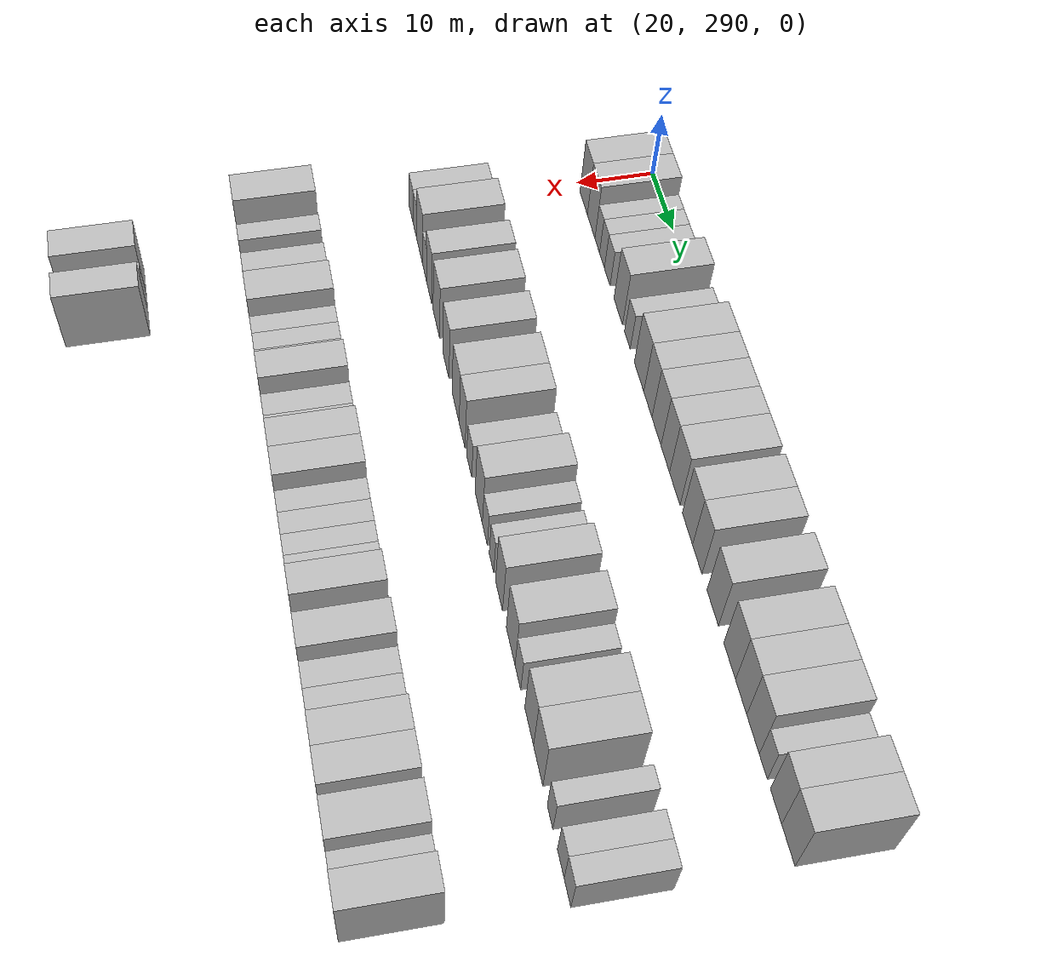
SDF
<sdf version="1.6">
 <world name="default">
  <model name="building_158">
   <static>1</static>
   <pose>25.0000 293.5448 0 0.000000 0.000000 0.000000</pose>
   <link name="link">
    <pose>0 0 4.50 0 0 0</pose>
    <collision name="collision"><geometry><box><size>10.0000 4.0485 9.0000</size></box></geometry></collision>
    <visual name="visual">
     <cast_shadows>0</cast_shadows>
     <geometry><box><size>10.0000 4.0485 9.0000</size></box></geometry>
     <material>
      <script>
       <uri>model://HANNAS_wall/materials/scripts</uri>
       <uri>model://HANNAS_wall/materials/textures</uri>
       <name>vrc/HANNAS_wall</name>
      </script>
     </material>
    </visual>
   </link>
  </model>
  <model name="building_159">
   <static>1</static>
   <pose>25.0000 297.6197 0 0.000000 0.000000 0.000000</pose>
   <link name="link">
    <pose>0 0 4.50 0 0 0</pose>
    <collision name="collision"><geometry><box><size>10.0000 4.1015 9.0000</size></box></geometry></collision>
    <visual name="visual">
     <cast_shadows>0</cast_shadows>
     <geometry><box><size>10.0000 4.1015 9.0000</size></box></geometry>
     <material>
      <script>
       <uri>model://HANNAS_wall/materials/scripts</uri>
       <uri>model://HANNAS_wall/materials/textures</uri>
       <name>vrc/HANNAS_wall</name>
      </script>
     </material>
    </visual>
   </link>
  </model>
  <model name="building_160">
   <static>1</static>
   <pose>25.0000 300.8931 0 0.000000 0.000000 0.000000</pose>
   <link name="link">
    <pose>0 0 3.00 0 0 0</pose>
    <collision name="collision"><geometry><box><size>10.0000 2.4452 6.0000</size></box></geometry></collision>
    <visual name="visual">
     <cast_shadows>0</cast_shadows>
     <geometry><box><size>10.0000 2.4452 6.0000</size></box></geometry>
     <material>
      <script>
       <uri>model://HANNAS_wall/materials/scripts</uri>
       <uri>model://HANNAS_wall/materials/textures</uri>
       <name>vrc/HANNAS_wall</name>
      </script>
     </material>
    </visual>
   </link>
  </model>
  <model name="building_161">
   <static>1</static>
   <pose>25.0000 303.3896 0 0.000000 0.000000 0.000000</pose>
   <link name="link">
    <pose>0 0 3.00 0 0 0</pose>
    <collision name="collision"><geometry><box><size>10.0000 2.5478 6.0000</size></box></geometry></collision>
    <visual name="visual">
     <cast_shadows>0</cast_shadows>
     <geometry><box><size>10.0000 2.5478 6.0000</size></box></geometry>
     <material>
      <script>
       <uri>model://HANNAS_wall/materials/scripts</uri>
       <uri>model://HANNAS_wall/materials/textures</uri>
       <name>vrc/HANNAS_wall</name>
      </script>
     </material>
    </visual>
   </link>
  </model>
  <model name="building_162">
   <static>1</static>
   <pose>25.0000 306.1260 0 0.000000 0.000000 0.000000</pose>
   <link name="link">
    <pose>0 0 3.00 0 0 0</pose>
    <collision name="collision"><geometry><box><size>10.0000 2.9250 6.0000</size></box></geometry></collision>
    <visual name="visual">
     <cast_shadows>0</cast_shadows>
     <geometry><box><size>10.0000 2.9250 6.0000</size></box></geometry>
     <material>
      <script>
       <uri>model://HANNAS_wall/materials/scripts</uri>
       <uri>model://HANNAS_wall/materials/textures</uri>
       <name>vrc/HANNAS_wall</name>
      </script>
     </material>
    </visual>
   </link>
  </model>
  <model name="building_163">
   <static>1</static>
   <pose>25.0000 311.7057 0 0.000000 0.000000 0.000000</pose>
   <link name="link">
    <pose>0 0 4.50 0 0 0</pose>
    <collision name="collision"><geometry><box><size>10.0000 4.2346 9.0000</size></box></geometry></collision>
    <visual name="visual">
     <cast_shadows>0</cast_shadows>
     <geometry><box><size>10.0000 4.2346 9.0000</size></box></geometry>
     <material>
      <script>
       <uri>model://HANNAS_wall/materials/scripts</uri>
       <uri>model://HANNAS_wall/materials/textures</uri>
       <name>vrc/HANNAS_wall</name>
      </script>
     </material>
    </visual>
   </link>
  </model>
  <model name="building_164">
   <static>1</static>
   <pose>25.0000 316.1904 0 0.000000 0.000000 0.000000</pose>
   <link name="link">
    <pose>0 0 3.00 0 0 0</pose>
    <collision name="collision"><geometry><box><size>10.0000 2.7348 6.0000</size></box></geometry></collision>
    <visual name="visual">
     <cast_shadows>0</cast_shadows>
     <geometry><box><size>10.0000 2.7348 6.0000</size></box></geometry>
     <material>
      <script>
       <uri>model://HANNAS_wall/materials/scripts</uri>
       <uri>model://HANNAS_wall/materials/textures</uri>
       <name>vrc/HANNAS_wall</name>
      </script>
     </material>
    </visual>
   </link>
  </model>
  <model name="building_165">
   <static>1</static>
   <pose>25.0000 321.7567 0 0.000000 0.000000 0.000000</pose>
   <link name="link">
    <pose>0 0 4.50 0 0 0</pose>
    <collision name="collision"><geometry><box><size>10.0000 4.3978 9.0000</size></box></geometry></collision>
    <visual name="visual">
     <cast_shadows>0</cast_shadows>
     <geometry><box><size>10.0000 4.3978 9.0000</size></box></geometry>
     <material>
      <script>
       <uri>model://HANNAS_wall/materials/scripts</uri>
       <uri>model://HANNAS_wall/materials/textures</uri>
       <name>vrc/HANNAS_wall</name>
      </script>
     </material>
    </visual>
   </link>
  </model>
  <model name="building_166">
   <static>1</static>
   <pose>25.0000 325.8307 0 0.000000 0.000000 0.000000</pose>
   <link name="link">
    <pose>0 0 4.50 0 0 0</pose>
    <collision name="collision"><geometry><box><size>10.0000 3.7501 9.0000</size></box></geometry></collision>
    <visual name="visual">
     <cast_shadows>0</cast_shadows>
     <geometry><box><size>10.0000 3.7501 9.0000</size></box></geometry>
     <material>
      <script>
       <uri>model://HANNAS_wall/materials/scripts</uri>
       <uri>model://HANNAS_wall/materials/textures</uri>
       <name>vrc/HANNAS_wall</name>
      </script>
     </material>
    </visual>
   </link>
  </model>
  <model name="building_167">
   <static>1</static>
   <pose>25.0000 329.7131 0 0.000000 0.000000 0.000000</pose>
   <link name="link">
    <pose>0 0 4.50 0 0 0</pose>
    <collision name="collision"><geometry><box><size>10.0000 4.0148 9.0000</size></box></geometry></collision>
    <visual name="visual">
     <cast_shadows>0</cast_shadows>
     <geometry><box><size>10.0000 4.0148 9.0000</size></box></geometry>
     <material>
      <script>
       <uri>model://HANNAS_wall/materials/scripts</uri>
       <uri>model://HANNAS_wall/materials/textures</uri>
       <name>vrc/HANNAS_wall</name>
      </script>
     </material>
    </visual>
   </link>
  </model>
  <model name="building_168">
   <static>1</static>
   <pose>25.0000 333.5801 0 0.000000 0.000000 0.000000</pose>
   <link name="link">
    <pose>0 0 4.50 0 0 0</pose>
    <collision name="collision"><geometry><box><size>10.0000 3.7192 9.0000</size></box></geometry></collision>
    <visual name="visual">
     <cast_shadows>0</cast_shadows>
     <geometry><box><size>10.0000 3.7192 9.0000</size></box></geometry>
     <material>
      <script>
       <uri>model://HANNAS_wall/materials/scripts</uri>
       <uri>model://HANNAS_wall/materials/textures</uri>
       <name>vrc/HANNAS_wall</name>
      </script>
     </material>
    </visual>
   </link>
  </model>
  <model name="building_169">
   <static>1</static>
   <pose>25.0000 337.6604 0 0.000000 0.000000 0.000000</pose>
   <link name="link">
    <pose>0 0 4.50 0 0 0</pose>
    <collision name="collision"><geometry><box><size>10.0000 4.4413 9.0000</size></box></geometry></collision>
    <visual name="visual">
     <cast_shadows>0</cast_shadows>
     <geometry><box><size>10.0000 4.4413 9.0000</size></box></geometry>
     <material>
      <script>
       <uri>model://HANNAS_wall/materials/scripts</uri>
       <uri>model://HANNAS_wall/materials/textures</uri>
       <name>vrc/HANNAS_wall</name>
      </script>
     </material>
    </visual>
   </link>
  </model>
  <model name="building_170">
   <static>1</static>
   <pose>25.0000 342.9638 0 0.000000 0.000000 0.000000</pose>
   <link name="link">
    <pose>0 0 4.50 0 0 0</pose>
    <collision name="collision"><geometry><box><size>10.0000 4.1656 9.0000</size></box></geometry></collision>
    <visual name="visual">
     <cast_shadows>0</cast_shadows>
     <geometry><box><size>10.0000 4.1656 9.0000</size></box></geometry>
     <material>
      <script>
       <uri>model://HANNAS_wall/materials/scripts</uri>
       <uri>model://HANNAS_wall/materials/textures</uri>
       <name>vrc/HANNAS_wall</name>
      </script>
     </material>
    </visual>
   </link>
  </model>
  <model name="building_171">
   <static>1</static>
   <pose>25.0000 346.9037 0 0.000000 0.000000 0.000000</pose>
   <link name="link">
    <pose>0 0 4.50 0 0 0</pose>
    <collision name="collision"><geometry><box><size>10.0000 3.7142 9.0000</size></box></geometry></collision>
    <visual name="visual">
     <cast_shadows>0</cast_shadows>
     <geometry><box><size>10.0000 3.7142 9.0000</size></box></geometry>
     <material>
      <script>
       <uri>model://HANNAS_wall/materials/scripts</uri>
       <uri>model://HANNAS_wall/materials/textures</uri>
       <name>vrc/HANNAS_wall</name>
      </script>
     </material>
    </visual>
   </link>
  </model>
  <model name="building_172">
   <static>1</static>
   <pose>25.0000 352.9465 0 0.000000 0.000000 0.000000</pose>
   <link name="link">
    <pose>0 0 4.50 0 0 0</pose>
    <collision name="collision"><geometry><box><size>10.0000 4.3714 9.0000</size></box></geometry></collision>
    <visual name="visual">
     <cast_shadows>0</cast_shadows>
     <geometry><box><size>10.0000 4.3714 9.0000</size></box></geometry>
     <material>
      <script>
       <uri>model://HANNAS_wall/materials/scripts</uri>
       <uri>model://HANNAS_wall/materials/textures</uri>
       <name>vrc/HANNAS_wall</name>
      </script>
     </material>
    </visual>
   </link>
  </model>
  <model name="building_173">
   <static>1</static>
   <pose>25.0000 359.2829 0 0.000000 0.000000 0.000000</pose>
   <link name="link">
    <pose>0 0 4.50 0 0 0</pose>
    <collision name="collision"><geometry><box><size>10.0000 4.3014 9.0000</size></box></geometry></collision>
    <visual name="visual">
     <cast_shadows>0</cast_shadows>
     <geometry><box><size>10.0000 4.3014 9.0000</size></box></geometry>
     <material>
      <script>
       <uri>model://HANNAS_wall/materials/scripts</uri>
       <uri>model://HANNAS_wall/materials/textures</uri>
       <name>vrc/HANNAS_wall</name>
      </script>
     </material>
    </visual>
   </link>
  </model>
  <model name="building_174">
   <static>1</static>
   <pose>25.0000 363.4236 0 0.000000 0.000000 0.000000</pose>
   <link name="link">
    <pose>0 0 4.50 0 0 0</pose>
    <collision name="collision"><geometry><box><size>10.0000 3.9801 9.0000</size></box></geometry></collision>
    <visual name="visual">
     <cast_shadows>0</cast_shadows>
     <geometry><box><size>10.0000 3.9801 9.0000</size></box></geometry>
     <material>
      <script>
       <uri>model://HANNAS_wall/materials/scripts</uri>
       <uri>model://HANNAS_wall/materials/textures</uri>
       <name>vrc/HANNAS_wall</name>
      </script>
     </material>
    </visual>
   </link>
  </model>
  <model name="building_175">
   <static>1</static>
   <pose>25.0000 367.5806 0 0.000000 0.000000 0.000000</pose>
   <link name="link">
    <pose>0 0 4.50 0 0 0</pose>
    <collision name="collision"><geometry><box><size>10.0000 4.3338 9.0000</size></box></geometry></collision>
    <visual name="visual">
     <cast_shadows>0</cast_shadows>
     <geometry><box><size>10.0000 4.3338 9.0000</size></box></geometry>
     <material>
      <script>
       <uri>model://HANNAS_wall/materials/scripts</uri>
       <uri>model://HANNAS_wall/materials/textures</uri>
       <name>vrc/HANNAS_wall</name>
      </script>
     </material>
    </visual>
   </link>
  </model>
  <model name="building_176">
   <static>1</static>
   <pose>25.0000 371.0945 0 0.000000 0.000000 0.000000</pose>
   <link name="link">
    <pose>0 0 3.00 0 0 0</pose>
    <collision name="collision"><geometry><box><size>10.0000 2.6939 6.0000</size></box></geometry></collision>
    <visual name="visual">
     <cast_shadows>0</cast_shadows>
     <geometry><box><size>10.0000 2.6939 6.0000</size></box></geometry>
     <material>
      <script>
       <uri>model://HANNAS_wall/materials/scripts</uri>
       <uri>model://HANNAS_wall/materials/textures</uri>
       <name>vrc/HANNAS_wall</name>
      </script>
     </material>
    </visual>
   </link>
  </model>
  <model name="building_177">
   <static>1</static>
   <pose>25.0000 375.2835 0 0.000000 0.000000 0.000000</pose>
   <link name="link">
    <pose>0 0 4.50 0 0 0</pose>
    <collision name="collision"><geometry><box><size>10.0000 3.6842 9.0000</size></box></geometry></collision>
    <visual name="visual">
     <cast_shadows>0</cast_shadows>
     <geometry><box><size>10.0000 3.6842 9.0000</size></box></geometry>
     <material>
      <script>
       <uri>model://HANNAS_wall/materials/scripts</uri>
       <uri>model://HANNAS_wall/materials/textures</uri>
       <name>vrc/HANNAS_wall</name>
      </script>
     </material>
    </visual>
   </link>
  </model>
  <model name="building_178">
   <static>1</static>
   <pose>25.0000 379.2505 0 0.000000 0.000000 0.000000</pose>
   <link name="link">
    <pose>0 0 4.50 0 0 0</pose>
    <collision name="collision"><geometry><box><size>10.0000 4.2497 9.0000</size></box></geometry></collision>
    <visual name="visual">
     <cast_shadows>0</cast_shadows>
     <geometry><box><size>10.0000 4.2497 9.0000</size></box></geometry>
     <material>
      <script>
       <uri>model://HANNAS_wall/materials/scripts</uri>
       <uri>model://HANNAS_wall/materials/textures</uri>
       <name>vrc/HANNAS_wall</name>
      </script>
     </material>
    </visual>
   </link>
  </model>
  <model name="building_353">
   <static>1</static>
   <pose>47.0000 291.7545 0 0.000000 0.000000 0.000000</pose>
   <link name="link">
    <pose>0 0 3.00 0 0 0</pose>
    <collision name="collision"><geometry><box><size>10.0000 2.9041 6.0000</size></box></geometry></collision>
    <visual name="visual">
     <cast_shadows>0</cast_shadows>
     <geometry><box><size>10.0000 2.9041 6.0000</size></box></geometry>
     <material>
      <script>
       <uri>model://HANNAS_wall/materials/scripts</uri>
       <uri>model://HANNAS_wall/materials/textures</uri>
       <name>vrc/HANNAS_wall</name>
      </script>
     </material>
    </visual>
   </link>
  </model>
  <model name="building_354">
   <static>1</static>
   <pose>47.0000 294.5785 0 0.000000 0.000000 0.000000</pose>
   <link name="link">
    <pose>0 0 3.00 0 0 0</pose>
    <collision name="collision"><geometry><box><size>10.0000 2.7438 6.0000</size></box></geometry></collision>
    <visual name="visual">
     <cast_shadows>0</cast_shadows>
     <geometry><box><size>10.0000 2.7438 6.0000</size></box></geometry>
     <material>
      <script>
       <uri>model://HANNAS_wall/materials/scripts</uri>
       <uri>model://HANNAS_wall/materials/textures</uri>
       <name>vrc/HANNAS_wall</name>
      </script>
     </material>
    </visual>
   </link>
  </model>
  <model name="building_355">
   <static>1</static>
   <pose>47.0000 298.1355 0 0.000000 0.000000 0.000000</pose>
   <link name="link">
    <pose>0 0 4.50 0 0 0</pose>
    <collision name="collision"><geometry><box><size>10.0000 4.3703 9.0000</size></box></geometry></collision>
    <visual name="visual">
     <cast_shadows>0</cast_shadows>
     <geometry><box><size>10.0000 4.3703 9.0000</size></box></geometry>
     <material>
      <script>
       <uri>model://HANNAS_wall/materials/scripts</uri>
       <uri>model://HANNAS_wall/materials/textures</uri>
       <name>vrc/HANNAS_wall</name>
      </script>
     </material>
    </visual>
   </link>
  </model>
  <model name="building_356">
   <static>1</static>
   <pose>47.0000 301.6172 0 0.000000 0.000000 0.000000</pose>
   <link name="link">
    <pose>0 0 3.00 0 0 0</pose>
    <collision name="collision"><geometry><box><size>10.0000 2.5930 6.0000</size></box></geometry></collision>
    <visual name="visual">
     <cast_shadows>0</cast_shadows>
     <geometry><box><size>10.0000 2.5930 6.0000</size></box></geometry>
     <material>
      <script>
       <uri>model://HANNAS_wall/materials/scripts</uri>
       <uri>model://HANNAS_wall/materials/textures</uri>
       <name>vrc/HANNAS_wall</name>
      </script>
     </material>
    </visual>
   </link>
  </model>
  <model name="building_357">
   <static>1</static>
   <pose>47.0000 304.7554 0 0.000000 0.000000 0.000000</pose>
   <link name="link">
    <pose>0 0 4.50 0 0 0</pose>
    <collision name="collision"><geometry><box><size>10.0000 3.6834 9.0000</size></box></geometry></collision>
    <visual name="visual">
     <cast_shadows>0</cast_shadows>
     <geometry><box><size>10.0000 3.6834 9.0000</size></box></geometry>
     <material>
      <script>
       <uri>model://HANNAS_wall/materials/scripts</uri>
       <uri>model://HANNAS_wall/materials/textures</uri>
       <name>vrc/HANNAS_wall</name>
      </script>
     </material>
    </visual>
   </link>
  </model>
  <model name="building_358">
   <static>1</static>
   <pose>47.0000 309.8081 0 0.000000 0.000000 0.000000</pose>
   <link name="link">
    <pose>0 0 4.50 0 0 0</pose>
    <collision name="collision"><geometry><box><size>10.0000 4.4220 9.0000</size></box></geometry></collision>
    <visual name="visual">
     <cast_shadows>0</cast_shadows>
     <geometry><box><size>10.0000 4.4220 9.0000</size></box></geometry>
     <material>
      <script>
       <uri>model://HANNAS_wall/materials/scripts</uri>
       <uri>model://HANNAS_wall/materials/textures</uri>
       <name>vrc/HANNAS_wall</name>
      </script>
     </material>
    </visual>
   </link>
  </model>
  <model name="building_359">
   <static>1</static>
   <pose>47.0000 316.0968 0 0.000000 0.000000 0.000000</pose>
   <link name="link">
    <pose>0 0 4.50 0 0 0</pose>
    <collision name="collision"><geometry><box><size>10.0000 4.1554 9.0000</size></box></geometry></collision>
    <visual name="visual">
     <cast_shadows>0</cast_shadows>
     <geometry><box><size>10.0000 4.1554 9.0000</size></box></geometry>
     <material>
      <script>
       <uri>model://HANNAS_wall/materials/scripts</uri>
       <uri>model://HANNAS_wall/materials/textures</uri>
       <name>vrc/HANNAS_wall</name>
      </script>
     </material>
    </visual>
   </link>
  </model>
  <model name="building_360">
   <static>1</static>
   <pose>47.0000 322.3900 0 0.000000 0.000000 0.000000</pose>
   <link name="link">
    <pose>0 0 4.50 0 0 0</pose>
    <collision name="collision"><geometry><box><size>10.0000 4.4310 9.0000</size></box></geometry></collision>
    <visual name="visual">
     <cast_shadows>0</cast_shadows>
     <geometry><box><size>10.0000 4.4310 9.0000</size></box></geometry>
     <material>
      <script>
       <uri>model://HANNAS_wall/materials/scripts</uri>
       <uri>model://HANNAS_wall/materials/textures</uri>
       <name>vrc/HANNAS_wall</name>
      </script>
     </material>
    </visual>
   </link>
  </model>
  <model name="building_361">
   <static>1</static>
   <pose>47.0000 326.4262 0 0.000000 0.000000 0.000000</pose>
   <link name="link">
    <pose>0 0 4.50 0 0 0</pose>
    <collision name="collision"><geometry><box><size>10.0000 3.6414 9.0000</size></box></geometry></collision>
    <visual name="visual">
     <cast_shadows>0</cast_shadows>
     <geometry><box><size>10.0000 3.6414 9.0000</size></box></geometry>
     <material>
      <script>
       <uri>model://HANNAS_wall/materials/scripts</uri>
       <uri>model://HANNAS_wall/materials/textures</uri>
       <name>vrc/HANNAS_wall</name>
      </script>
     </material>
    </visual>
   </link>
  </model>
  <model name="building_362">
   <static>1</static>
   <pose>47.0000 330.7345 0 0.000000 0.000000 0.000000</pose>
   <link name="link">
    <pose>0 0 3.00 0 0 0</pose>
    <collision name="collision"><geometry><box><size>10.0000 2.9752 6.0000</size></box></geometry></collision>
    <visual name="visual">
     <cast_shadows>0</cast_shadows>
     <geometry><box><size>10.0000 2.9752 6.0000</size></box></geometry>
     <material>
      <script>
       <uri>model://HANNAS_wall/materials/scripts</uri>
       <uri>model://HANNAS_wall/materials/textures</uri>
       <name>vrc/HANNAS_wall</name>
      </script>
     </material>
    </visual>
   </link>
  </model>
  <model name="building_363">
   <static>1</static>
   <pose>47.0000 336.3121 0 0.000000 0.000000 0.000000</pose>
   <link name="link">
    <pose>0 0 4.50 0 0 0</pose>
    <collision name="collision"><geometry><box><size>10.0000 4.1800 9.0000</size></box></geometry></collision>
    <visual name="visual">
     <cast_shadows>0</cast_shadows>
     <geometry><box><size>10.0000 4.1800 9.0000</size></box></geometry>
     <material>
      <script>
       <uri>model://HANNAS_wall/materials/scripts</uri>
       <uri>model://HANNAS_wall/materials/textures</uri>
       <name>vrc/HANNAS_wall</name>
      </script>
     </material>
    </visual>
   </link>
  </model>
  <model name="building_364">
   <static>1</static>
   <pose>47.0000 339.8355 0 0.000000 0.000000 0.000000</pose>
   <link name="link">
    <pose>0 0 3.00 0 0 0</pose>
    <collision name="collision"><geometry><box><size>10.0000 2.8668 6.0000</size></box></geometry></collision>
    <visual name="visual">
     <cast_shadows>0</cast_shadows>
     <geometry><box><size>10.0000 2.8668 6.0000</size></box></geometry>
     <material>
      <script>
       <uri>model://HANNAS_wall/materials/scripts</uri>
       <uri>model://HANNAS_wall/materials/textures</uri>
       <name>vrc/HANNAS_wall</name>
      </script>
     </material>
    </visual>
   </link>
  </model>
  <model name="building_365">
   <static>1</static>
   <pose>47.0000 343.4858 0 0.000000 0.000000 0.000000</pose>
   <link name="link">
    <pose>0 0 3.00 0 0 0</pose>
    <collision name="collision"><geometry><box><size>10.0000 2.4337 6.0000</size></box></geometry></collision>
    <visual name="visual">
     <cast_shadows>0</cast_shadows>
     <geometry><box><size>10.0000 2.4337 6.0000</size></box></geometry>
     <material>
      <script>
       <uri>model://HANNAS_wall/materials/scripts</uri>
       <uri>model://HANNAS_wall/materials/textures</uri>
       <name>vrc/HANNAS_wall</name>
      </script>
     </material>
    </visual>
   </link>
  </model>
  <model name="building_366">
   <static>1</static>
   <pose>47.0000 347.5676 0 0.000000 0.000000 0.000000</pose>
   <link name="link">
    <pose>0 0 4.50 0 0 0</pose>
    <collision name="collision"><geometry><box><size>10.0000 3.7299 9.0000</size></box></geometry></collision>
    <visual name="visual">
     <cast_shadows>0</cast_shadows>
     <geometry><box><size>10.0000 3.7299 9.0000</size></box></geometry>
     <material>
      <script>
       <uri>model://HANNAS_wall/materials/scripts</uri>
       <uri>model://HANNAS_wall/materials/textures</uri>
       <name>vrc/HANNAS_wall</name>
      </script>
     </material>
    </visual>
   </link>
  </model>
  <model name="building_367">
   <static>1</static>
   <pose>47.0000 353.6624 0 0.000000 0.000000 0.000000</pose>
   <link name="link">
    <pose>0 0 4.50 0 0 0</pose>
    <collision name="collision"><geometry><box><size>10.0000 4.4598 9.0000</size></box></geometry></collision>
    <visual name="visual">
     <cast_shadows>0</cast_shadows>
     <geometry><box><size>10.0000 4.4598 9.0000</size></box></geometry>
     <material>
      <script>
       <uri>model://HANNAS_wall/materials/scripts</uri>
       <uri>model://HANNAS_wall/materials/textures</uri>
       <name>vrc/HANNAS_wall</name>
      </script>
     </material>
    </visual>
   </link>
  </model>
  <model name="building_368">
   <static>1</static>
   <pose>47.0000 357.3154 0 0.000000 0.000000 0.000000</pose>
   <link name="link">
    <pose>0 0 3.00 0 0 0</pose>
    <collision name="collision"><geometry><box><size>10.0000 2.8463 6.0000</size></box></geometry></collision>
    <visual name="visual">
     <cast_shadows>0</cast_shadows>
     <geometry><box><size>10.0000 2.8463 6.0000</size></box></geometry>
     <material>
      <script>
       <uri>model://HANNAS_wall/materials/scripts</uri>
       <uri>model://HANNAS_wall/materials/textures</uri>
       <name>vrc/HANNAS_wall</name>
      </script>
     </material>
    </visual>
   </link>
  </model>
  <model name="building_369">
   <static>1</static>
   <pose>47.0000 362.8453 0 0.000000 0.000000 0.000000</pose>
   <link name="link">
    <pose>0 0 4.50 0 0 0</pose>
    <collision name="collision"><geometry><box><size>10.0000 4.2134 9.0000</size></box></geometry></collision>
    <visual name="visual">
     <cast_shadows>0</cast_shadows>
     <geometry><box><size>10.0000 4.2134 9.0000</size></box></geometry>
     <material>
      <script>
       <uri>model://HANNAS_wall/materials/scripts</uri>
       <uri>model://HANNAS_wall/materials/textures</uri>
       <name>vrc/HANNAS_wall</name>
      </script>
     </material>
    </visual>
   </link>
  </model>
  <model name="building_370">
   <static>1</static>
   <pose>47.0000 367.1261 0 0.000000 0.000000 0.000000</pose>
   <link name="link">
    <pose>0 0 4.50 0 0 0</pose>
    <collision name="collision"><geometry><box><size>10.0000 4.3483 9.0000</size></box></geometry></collision>
    <visual name="visual">
     <cast_shadows>0</cast_shadows>
     <geometry><box><size>10.0000 4.3483 9.0000</size></box></geometry>
     <material>
      <script>
       <uri>model://HANNAS_wall/materials/scripts</uri>
       <uri>model://HANNAS_wall/materials/textures</uri>
       <name>vrc/HANNAS_wall</name>
      </script>
     </material>
    </visual>
   </link>
  </model>
  <model name="building_371">
   <static>1</static>
   <pose>47.0000 372.5438 0 0.000000 0.000000 0.000000</pose>
   <link name="link">
    <pose>0 0 3.00 0 0 0</pose>
    <collision name="collision"><geometry><box><size>10.0000 2.4871 6.0000</size></box></geometry></collision>
    <visual name="visual">
     <cast_shadows>0</cast_shadows>
     <geometry><box><size>10.0000 2.4871 6.0000</size></box></geometry>
     <material>
      <script>
       <uri>model://HANNAS_wall/materials/scripts</uri>
       <uri>model://HANNAS_wall/materials/textures</uri>
       <name>vrc/HANNAS_wall</name>
      </script>
     </material>
    </visual>
   </link>
  </model>
  <model name="building_372">
   <static>1</static>
   <pose>47.0000 377.2314 0 0.000000 0.000000 0.000000</pose>
   <link name="link">
    <pose>0 0 3.00 0 0 0</pose>
    <collision name="collision"><geometry><box><size>10.0000 2.8880 6.0000</size></box></geometry></collision>
    <visual name="visual">
     <cast_shadows>0</cast_shadows>
     <geometry><box><size>10.0000 2.8880 6.0000</size></box></geometry>
     <material>
      <script>
       <uri>model://HANNAS_wall/materials/scripts</uri>
       <uri>model://HANNAS_wall/materials/textures</uri>
       <name>vrc/HANNAS_wall</name>
      </script>
     </material>
    </visual>
   </link>
  </model>
  <model name="building_373">
   <static>1</static>
   <pose>47.0000 380.0991 0 0.000000 0.000000 0.000000</pose>
   <link name="link">
    <pose>0 0 3.00 0 0 0</pose>
    <collision name="collision"><geometry><box><size>10.0000 2.8475 6.0000</size></box></geometry></collision>
    <visual name="visual">
     <cast_shadows>0</cast_shadows>
     <geometry><box><size>10.0000 2.8475 6.0000</size></box></geometry>
     <material>
      <script>
       <uri>model://HANNAS_wall/materials/scripts</uri>
       <uri>model://HANNAS_wall/materials/textures</uri>
       <name>vrc/HANNAS_wall</name>
      </script>
     </material>
    </visual>
   </link>
  </model>
  <model name="building_543">
   <static>1</static>
   <pose>69.0000 292.0014 0 0.000000 0.000000 0.000000</pose>
   <link name="link">
    <pose>0 0 4.50 0 0 0</pose>
    <collision name="collision"><geometry><box><size>10.0000 4.3662 9.0000</size></box></geometry></collision>
    <visual name="visual">
     <cast_shadows>0</cast_shadows>
     <geometry><box><size>10.0000 4.3662 9.0000</size></box></geometry>
     <material>
      <script>
       <uri>model://HANNAS_wall/materials/scripts</uri>
       <uri>model://HANNAS_wall/materials/textures</uri>
       <name>vrc/HANNAS_wall</name>
      </script>
     </material>
    </visual>
   </link>
  </model>
  <model name="building_544">
   <static>1</static>
   <pose>69.0000 296.5214 0 0.000000 0.000000 0.000000</pose>
   <link name="link">
    <pose>0 0 3.00 0 0 0</pose>
    <collision name="collision"><geometry><box><size>10.0000 2.6738 6.0000</size></box></geometry></collision>
    <visual name="visual">
     <cast_shadows>0</cast_shadows>
     <geometry><box><size>10.0000 2.6738 6.0000</size></box></geometry>
     <material>
      <script>
       <uri>model://HANNAS_wall/materials/scripts</uri>
       <uri>model://HANNAS_wall/materials/textures</uri>
       <name>vrc/HANNAS_wall</name>
      </script>
     </material>
    </visual>
   </link>
  </model>
  <model name="building_545">
   <static>1</static>
   <pose>69.0000 301.3318 0 0.000000 0.000000 0.000000</pose>
   <link name="link">
    <pose>0 0 3.00 0 0 0</pose>
    <collision name="collision"><geometry><box><size>10.0000 2.9470 6.0000</size></box></geometry></collision>
    <visual name="visual">
     <cast_shadows>0</cast_shadows>
     <geometry><box><size>10.0000 2.9470 6.0000</size></box></geometry>
     <material>
      <script>
       <uri>model://HANNAS_wall/materials/scripts</uri>
       <uri>model://HANNAS_wall/materials/textures</uri>
       <name>vrc/HANNAS_wall</name>
      </script>
     </material>
    </visual>
   </link>
  </model>
  <model name="building_546">
   <static>1</static>
   <pose>69.0000 304.1091 0 0.000000 0.000000 0.000000</pose>
   <link name="link">
    <pose>0 0 3.00 0 0 0</pose>
    <collision name="collision"><geometry><box><size>10.0000 2.6077 6.0000</size></box></geometry></collision>
    <visual name="visual">
     <cast_shadows>0</cast_shadows>
     <geometry><box><size>10.0000 2.6077 6.0000</size></box></geometry>
     <material>
      <script>
       <uri>model://HANNAS_wall/materials/scripts</uri>
       <uri>model://HANNAS_wall/materials/textures</uri>
       <name>vrc/HANNAS_wall</name>
      </script>
     </material>
    </visual>
   </link>
  </model>
  <model name="building_547">
   <static>1</static>
   <pose>69.0000 307.5928 0 0.000000 0.000000 0.000000</pose>
   <link name="link">
    <pose>0 0 4.50 0 0 0</pose>
    <collision name="collision"><geometry><box><size>10.0000 4.3598 9.0000</size></box></geometry></collision>
    <visual name="visual">
     <cast_shadows>0</cast_shadows>
     <geometry><box><size>10.0000 4.3598 9.0000</size></box></geometry>
     <material>
      <script>
       <uri>model://HANNAS_wall/materials/scripts</uri>
       <uri>model://HANNAS_wall/materials/textures</uri>
       <name>vrc/HANNAS_wall</name>
      </script>
     </material>
    </visual>
   </link>
  </model>
  <model name="building_548">
   <static>1</static>
   <pose>69.0000 311.0293 0 0.000000 0.000000 0.000000</pose>
   <link name="link">
    <pose>0 0 3.00 0 0 0</pose>
    <collision name="collision"><geometry><box><size>10.0000 2.5131 6.0000</size></box></geometry></collision>
    <visual name="visual">
     <cast_shadows>0</cast_shadows>
     <geometry><box><size>10.0000 2.5131 6.0000</size></box></geometry>
     <material>
      <script>
       <uri>model://HANNAS_wall/materials/scripts</uri>
       <uri>model://HANNAS_wall/materials/textures</uri>
       <name>vrc/HANNAS_wall</name>
      </script>
     </material>
    </visual>
   </link>
  </model>
  <model name="building_549">
   <static>1</static>
   <pose>69.0000 313.5198 0 0.000000 0.000000 0.000000</pose>
   <link name="link">
    <pose>0 0 3.00 0 0 0</pose>
    <collision name="collision"><geometry><box><size>10.0000 2.4679 6.0000</size></box></geometry></collision>
    <visual name="visual">
     <cast_shadows>0</cast_shadows>
     <geometry><box><size>10.0000 2.4679 6.0000</size></box></geometry>
     <material>
      <script>
       <uri>model://HANNAS_wall/materials/scripts</uri>
       <uri>model://HANNAS_wall/materials/textures</uri>
       <name>vrc/HANNAS_wall</name>
      </script>
     </material>
    </visual>
   </link>
  </model>
  <model name="building_550">
   <static>1</static>
   <pose>69.0000 316.0597 0 0.000000 0.000000 0.000000</pose>
   <link name="link">
    <pose>0 0 3.00 0 0 0</pose>
    <collision name="collision"><geometry><box><size>10.0000 2.6121 6.0000</size></box></geometry></collision>
    <visual name="visual">
     <cast_shadows>0</cast_shadows>
     <geometry><box><size>10.0000 2.6121 6.0000</size></box></geometry>
     <material>
      <script>
       <uri>model://HANNAS_wall/materials/scripts</uri>
       <uri>model://HANNAS_wall/materials/textures</uri>
       <name>vrc/HANNAS_wall</name>
      </script>
     </material>
    </visual>
   </link>
  </model>
  <model name="building_551">
   <static>1</static>
   <pose>69.0000 319.2498 0 0.000000 0.000000 0.000000</pose>
   <link name="link">
    <pose>0 0 4.50 0 0 0</pose>
    <collision name="collision"><geometry><box><size>10.0000 3.7681 9.0000</size></box></geometry></collision>
    <visual name="visual">
     <cast_shadows>0</cast_shadows>
     <geometry><box><size>10.0000 3.7681 9.0000</size></box></geometry>
     <material>
      <script>
       <uri>model://HANNAS_wall/materials/scripts</uri>
       <uri>model://HANNAS_wall/materials/textures</uri>
       <name>vrc/HANNAS_wall</name>
      </script>
     </material>
    </visual>
   </link>
  </model>
  <model name="building_552">
   <static>1</static>
   <pose>69.0000 322.6126 0 0.000000 0.000000 0.000000</pose>
   <link name="link">
    <pose>0 0 3.00 0 0 0</pose>
    <collision name="collision"><geometry><box><size>10.0000 2.9575 6.0000</size></box></geometry></collision>
    <visual name="visual">
     <cast_shadows>0</cast_shadows>
     <geometry><box><size>10.0000 2.9575 6.0000</size></box></geometry>
     <material>
      <script>
       <uri>model://HANNAS_wall/materials/scripts</uri>
       <uri>model://HANNAS_wall/materials/textures</uri>
       <name>vrc/HANNAS_wall</name>
      </script>
     </material>
    </visual>
   </link>
  </model>
  <model name="building_553">
   <static>1</static>
   <pose>69.0000 325.3706 0 0.000000 0.000000 0.000000</pose>
   <link name="link">
    <pose>0 0 3.00 0 0 0</pose>
    <collision name="collision"><geometry><box><size>10.0000 2.5586 6.0000</size></box></geometry></collision>
    <visual name="visual">
     <cast_shadows>0</cast_shadows>
     <geometry><box><size>10.0000 2.5586 6.0000</size></box></geometry>
     <material>
      <script>
       <uri>model://HANNAS_wall/materials/scripts</uri>
       <uri>model://HANNAS_wall/materials/textures</uri>
       <name>vrc/HANNAS_wall</name>
      </script>
     </material>
    </visual>
   </link>
  </model>
  <model name="building_554">
   <static>1</static>
   <pose>69.0000 328.5240 0 0.000000 0.000000 0.000000</pose>
   <link name="link">
    <pose>0 0 4.50 0 0 0</pose>
    <collision name="collision"><geometry><box><size>10.0000 3.7482 9.0000</size></box></geometry></collision>
    <visual name="visual">
     <cast_shadows>0</cast_shadows>
     <geometry><box><size>10.0000 3.7482 9.0000</size></box></geometry>
     <material>
      <script>
       <uri>model://HANNAS_wall/materials/scripts</uri>
       <uri>model://HANNAS_wall/materials/textures</uri>
       <name>vrc/HANNAS_wall</name>
      </script>
     </material>
    </visual>
   </link>
  </model>
  <model name="building_555">
   <static>1</static>
   <pose>69.0000 332.2629 0 0.000000 0.000000 0.000000</pose>
   <link name="link">
    <pose>0 0 4.50 0 0 0</pose>
    <collision name="collision"><geometry><box><size>10.0000 3.7297 9.0000</size></box></geometry></collision>
    <visual name="visual">
     <cast_shadows>0</cast_shadows>
     <geometry><box><size>10.0000 3.7297 9.0000</size></box></geometry>
     <material>
      <script>
       <uri>model://HANNAS_wall/materials/scripts</uri>
       <uri>model://HANNAS_wall/materials/textures</uri>
       <name>vrc/HANNAS_wall</name>
      </script>
     </material>
    </visual>
   </link>
  </model>
  <model name="building_556">
   <static>1</static>
   <pose>69.0000 335.5086 0 0.000000 0.000000 0.000000</pose>
   <link name="link">
    <pose>0 0 3.00 0 0 0</pose>
    <collision name="collision"><geometry><box><size>10.0000 2.7618 6.0000</size></box></geometry></collision>
    <visual name="visual">
     <cast_shadows>0</cast_shadows>
     <geometry><box><size>10.0000 2.7618 6.0000</size></box></geometry>
     <material>
      <script>
       <uri>model://HANNAS_wall/materials/scripts</uri>
       <uri>model://HANNAS_wall/materials/textures</uri>
       <name>vrc/HANNAS_wall</name>
      </script>
     </material>
    </visual>
   </link>
  </model>
  <model name="building_557">
   <static>1</static>
   <pose>69.0000 338.2683 0 0.000000 0.000000 0.000000</pose>
   <link name="link">
    <pose>0 0 3.00 0 0 0</pose>
    <collision name="collision"><geometry><box><size>10.0000 2.7575 6.0000</size></box></geometry></collision>
    <visual name="visual">
     <cast_shadows>0</cast_shadows>
     <geometry><box><size>10.0000 2.7575 6.0000</size></box></geometry>
     <material>
      <script>
       <uri>model://HANNAS_wall/materials/scripts</uri>
       <uri>model://HANNAS_wall/materials/textures</uri>
       <name>vrc/HANNAS_wall</name>
      </script>
     </material>
    </visual>
   </link>
  </model>
  <model name="building_558">
   <static>1</static>
   <pose>69.0000 340.9464 0 0.000000 0.000000 0.000000</pose>
   <link name="link">
    <pose>0 0 3.00 0 0 0</pose>
    <collision name="collision"><geometry><box><size>10.0000 2.5987 6.0000</size></box></geometry></collision>
    <visual name="visual">
     <cast_shadows>0</cast_shadows>
     <geometry><box><size>10.0000 2.5987 6.0000</size></box></geometry>
     <material>
      <script>
       <uri>model://HANNAS_wall/materials/scripts</uri>
       <uri>model://HANNAS_wall/materials/textures</uri>
       <name>vrc/HANNAS_wall</name>
      </script>
     </material>
    </visual>
   </link>
  </model>
  <model name="building_559">
   <static>1</static>
   <pose>69.0000 343.6337 0 0.000000 0.000000 0.000000</pose>
   <link name="link">
    <pose>0 0 3.00 0 0 0</pose>
    <collision name="collision"><geometry><box><size>10.0000 2.7759 6.0000</size></box></geometry></collision>
    <visual name="visual">
     <cast_shadows>0</cast_shadows>
     <geometry><box><size>10.0000 2.7759 6.0000</size></box></geometry>
     <material>
      <script>
       <uri>model://HANNAS_wall/materials/scripts</uri>
       <uri>model://HANNAS_wall/materials/textures</uri>
       <name>vrc/HANNAS_wall</name>
      </script>
     </material>
    </visual>
   </link>
  </model>
  <model name="building_560">
   <static>1</static>
   <pose>69.0000 346.8376 0 0.000000 0.000000 0.000000</pose>
   <link name="link">
    <pose>0 0 4.50 0 0 0</pose>
    <collision name="collision"><geometry><box><size>10.0000 3.6319 9.0000</size></box></geometry></collision>
    <visual name="visual">
     <cast_shadows>0</cast_shadows>
     <geometry><box><size>10.0000 3.6319 9.0000</size></box></geometry>
     <material>
      <script>
       <uri>model://HANNAS_wall/materials/scripts</uri>
       <uri>model://HANNAS_wall/materials/textures</uri>
       <name>vrc/HANNAS_wall</name>
      </script>
     </material>
    </visual>
   </link>
  </model>
  <model name="building_561">
   <static>1</static>
   <pose>69.0000 352.6418 0 0.000000 0.000000 0.000000</pose>
   <link name="link">
    <pose>0 0 4.50 0 0 0</pose>
    <collision name="collision"><geometry><box><size>10.0000 3.9765 9.0000</size></box></geometry></collision>
    <visual name="visual">
     <cast_shadows>0</cast_shadows>
     <geometry><box><size>10.0000 3.9765 9.0000</size></box></geometry>
     <material>
      <script>
       <uri>model://HANNAS_wall/materials/scripts</uri>
       <uri>model://HANNAS_wall/materials/textures</uri>
       <name>vrc/HANNAS_wall</name>
      </script>
     </material>
    </visual>
   </link>
  </model>
  <model name="building_562">
   <static>1</static>
   <pose>69.0000 356.1165 0 0.000000 0.000000 0.000000</pose>
   <link name="link">
    <pose>0 0 3.00 0 0 0</pose>
    <collision name="collision"><geometry><box><size>10.0000 2.9728 6.0000</size></box></geometry></collision>
    <visual name="visual">
     <cast_shadows>0</cast_shadows>
     <geometry><box><size>10.0000 2.9728 6.0000</size></box></geometry>
     <material>
      <script>
       <uri>model://HANNAS_wall/materials/scripts</uri>
       <uri>model://HANNAS_wall/materials/textures</uri>
       <name>vrc/HANNAS_wall</name>
      </script>
     </material>
    </visual>
   </link>
  </model>
  <model name="building_563">
   <static>1</static>
   <pose>69.0000 358.9812 0 0.000000 0.000000 0.000000</pose>
   <link name="link">
    <pose>0 0 3.00 0 0 0</pose>
    <collision name="collision"><geometry><box><size>10.0000 2.7567 6.0000</size></box></geometry></collision>
    <visual name="visual">
     <cast_shadows>0</cast_shadows>
     <geometry><box><size>10.0000 2.7567 6.0000</size></box></geometry>
     <material>
      <script>
       <uri>model://HANNAS_wall/materials/scripts</uri>
       <uri>model://HANNAS_wall/materials/textures</uri>
       <name>vrc/HANNAS_wall</name>
      </script>
     </material>
    </visual>
   </link>
  </model>
  <model name="building_564">
   <static>1</static>
   <pose>69.0000 363.1904 0 0.000000 0.000000 0.000000</pose>
   <link name="link">
    <pose>0 0 4.50 0 0 0</pose>
    <collision name="collision"><geometry><box><size>10.0000 3.6617 9.0000</size></box></geometry></collision>
    <visual name="visual">
     <cast_shadows>0</cast_shadows>
     <geometry><box><size>10.0000 3.6617 9.0000</size></box></geometry>
     <material>
      <script>
       <uri>model://HANNAS_wall/materials/scripts</uri>
       <uri>model://HANNAS_wall/materials/textures</uri>
       <name>vrc/HANNAS_wall</name>
      </script>
     </material>
    </visual>
   </link>
  </model>
  <model name="building_565">
   <static>1</static>
   <pose>69.0000 366.9949 0 0.000000 0.000000 0.000000</pose>
   <link name="link">
    <pose>0 0 4.50 0 0 0</pose>
    <collision name="collision"><geometry><box><size>10.0000 3.9473 9.0000</size></box></geometry></collision>
    <visual name="visual">
     <cast_shadows>0</cast_shadows>
     <geometry><box><size>10.0000 3.9473 9.0000</size></box></geometry>
     <material>
      <script>
       <uri>model://HANNAS_wall/materials/scripts</uri>
       <uri>model://HANNAS_wall/materials/textures</uri>
       <name>vrc/HANNAS_wall</name>
      </script>
     </material>
    </visual>
   </link>
  </model>
  <model name="building_566">
   <static>1</static>
   <pose>69.0000 372.1312 0 0.000000 0.000000 0.000000</pose>
   <link name="link">
    <pose>0 0 4.50 0 0 0</pose>
    <collision name="collision"><geometry><box><size>10.0000 4.3255 9.0000</size></box></geometry></collision>
    <visual name="visual">
     <cast_shadows>0</cast_shadows>
     <geometry><box><size>10.0000 4.3255 9.0000</size></box></geometry>
     <material>
      <script>
       <uri>model://HANNAS_wall/materials/scripts</uri>
       <uri>model://HANNAS_wall/materials/textures</uri>
       <name>vrc/HANNAS_wall</name>
      </script>
     </material>
    </visual>
   </link>
  </model>
  <model name="building_567">
   <static>1</static>
   <pose>69.0000 375.6824 0 0.000000 0.000000 0.000000</pose>
   <link name="link">
    <pose>0 0 3.00 0 0 0</pose>
    <collision name="collision"><geometry><box><size>10.0000 2.7768 6.0000</size></box></geometry></collision>
    <visual name="visual">
     <cast_shadows>0</cast_shadows>
     <geometry><box><size>10.0000 2.7768 6.0000</size></box></geometry>
     <material>
      <script>
       <uri>model://HANNAS_wall/materials/scripts</uri>
       <uri>model://HANNAS_wall/materials/textures</uri>
       <name>vrc/HANNAS_wall</name>
      </script>
     </material>
    </visual>
   </link>
  </model>
  <model name="building_568">
   <static>1</static>
   <pose>69.0000 378.9943 0 0.000000 0.000000 0.000000</pose>
   <link name="link">
    <pose>0 0 4.50 0 0 0</pose>
    <collision name="collision"><geometry><box><size>10.0000 3.8471 9.0000</size></box></geometry></collision>
    <visual name="visual">
     <cast_shadows>0</cast_shadows>
     <geometry><box><size>10.0000 3.8471 9.0000</size></box></geometry>
     <material>
      <script>
       <uri>model://HANNAS_wall/materials/scripts</uri>
       <uri>model://HANNAS_wall/materials/textures</uri>
       <name>vrc/HANNAS_wall</name>
      </script>
     </material>
    </visual>
   </link>
  </model>
  <model name="building_734">
   <static>1</static>
   <pose>91.0000 297.2391 0 0.000000 0.000000 0.000000</pose>
   <link name="link">
    <pose>0 0 4.50 0 0 0</pose>
    <collision name="collision"><geometry><box><size>10.0000 4.1049 9.0000</size></box></geometry></collision>
    <visual name="visual">
     <cast_shadows>0</cast_shadows>
     <geometry><box><size>10.0000 4.1049 9.0000</size></box></geometry>
     <material>
      <script>
       <uri>model://HANNAS_wall/materials/scripts</uri>
       <uri>model://HANNAS_wall/materials/textures</uri>
       <name>vrc/HANNAS_wall</name>
      </script>
     </material>
    </visual>
   </link>
  </model>
  <model name="building_735">
   <static>1</static>
   <pose>91.0000 300.5574 0 0.000000 0.000000 0.000000</pose>
   <link name="link">
    <pose>0 0 3.00 0 0 0</pose>
    <collision name="collision"><geometry><box><size>10.0000 2.5316 6.0000</size></box></geometry></collision>
    <visual name="visual">
     <cast_shadows>0</cast_shadows>
     <geometry><box><size>10.0000 2.5316 6.0000</size></box></geometry>
     <material>
      <script>
       <uri>model://HANNAS_wall/materials/scripts</uri>
       <uri>model://HANNAS_wall/materials/textures</uri>
       <name>vrc/HANNAS_wall</name>
      </script>
     </material>
    </visual>
   </link>
  </model>
  <model name="building_736">
   <static>1</static>
   <pose>91.0000 303.7213 0 0.000000 0.000000 0.000000</pose>
   <link name="link">
    <pose>0 0 4.50 0 0 0</pose>
    <collision name="collision"><geometry><box><size>10.0000 3.7963 9.0000</size></box></geometry></collision>
    <visual name="visual">
     <cast_shadows>0</cast_shadows>
     <geometry><box><size>10.0000 3.7963 9.0000</size></box></geometry>
     <material>
      <script>
       <uri>model://HANNAS_wall/materials/scripts</uri>
       <uri>model://HANNAS_wall/materials/textures</uri>
       <name>vrc/HANNAS_wall</name>
      </script>
     </material>
    </visual>
   </link>
  </model>
 </world>
</sdf>
